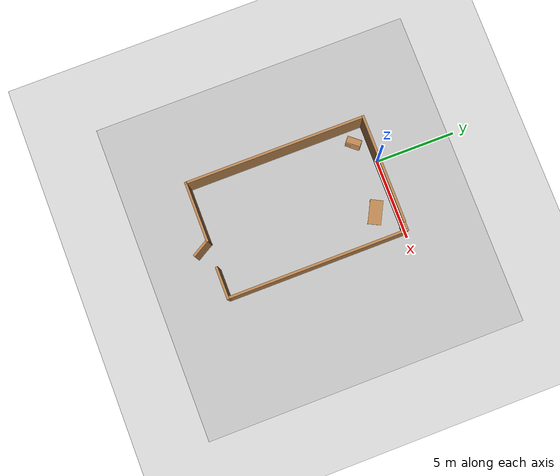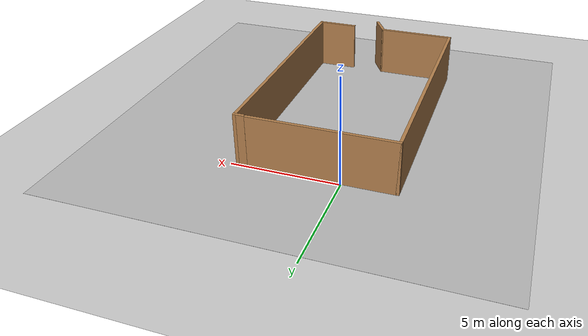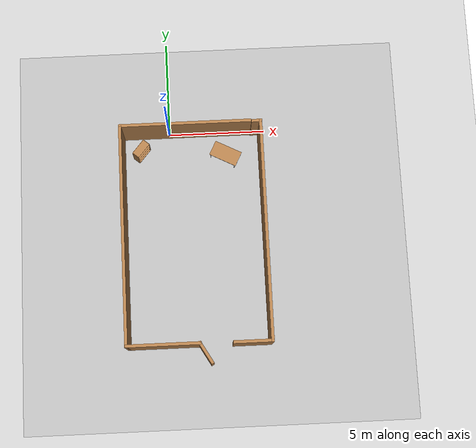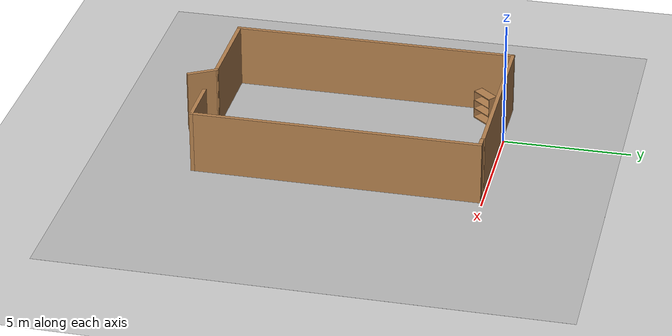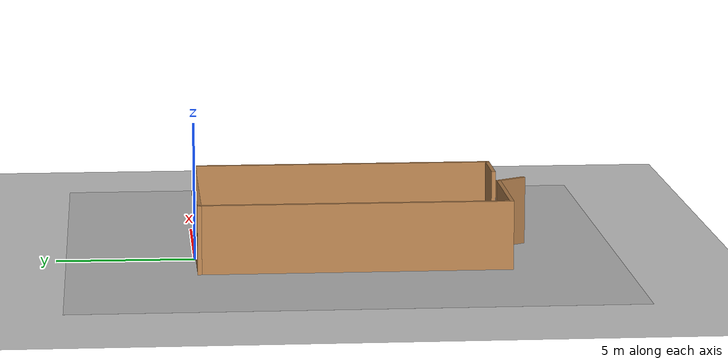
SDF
<sdf version="1.7">
 <world name="default">
  <light name="sun" type="directional">
   <pose>0 0 10 0 -0 0</pose>
   <diffuse>0.8 0.8 0.8 1</diffuse>
   <specular>0.2 0.2 0.2 1</specular>
   <attenuation>
    <range>1000</range>
    <constant>0.9</constant>
    <linear>0.01</linear>
    <quadratic>0.001</quadratic>
   </attenuation>
   <direction>-0.5 0.1 -0.9</direction>
   <spot><inner_angle>0</inner_angle><outer_angle>0</outer_angle><falloff>0</falloff></spot>
  </light>
  <model name="ground_plane">
   <static>1</static>
   <link name="link">
    <collision name="collision">
     <geometry><plane><normal>0 0 1</normal><size>100 100</size></plane></geometry>
     <surface><friction><ode><mu>100</mu><mu2>50</mu2></ode></friction></surface>
    </collision>
    <visual name="visual">
     <cast_shadows>0</cast_shadows>
     <geometry><plane><normal>0 0 1</normal><size>100 100</size></plane></geometry>
     <material>
      <script><uri>file://media/materials/scripts/gazebo.material</uri><name>Gazebo/Grey</name></script>
     </material>
    </visual>
   </link>
  </model>
  <gravity>0 0 -9.8</gravity>
  <magnetic_field>6e-06 2.3e-05 -4.2e-05</magnetic_field>
  <atmosphere type="adiabatic"/>
  <physics type="ode">
   <max_step_size>0.001</max_step_size>
   <real_time_factor>1</real_time_factor>
   <real_time_update_rate>1000</real_time_update_rate>
  </physics>
  <scene><ambient>0.4 0.4 0.4 1</ambient><background>0.7 0.7 0.7 1</background><shadows>1</shadows></scene>
  <spherical_coordinates>
   <surface_model>EARTH_WGS84</surface_model>
   <latitude_deg>0</latitude_deg>
   <longitude_deg>0</longitude_deg>
   <elevation>0</elevation>
   <heading_deg>0</heading_deg>
  </spherical_coordinates>
  <model name="bookshelf">
   <static>1</static>
   <link name="link">
    <inertial><mass>1</mass></inertial>
    <collision name="back">
     <pose>0 0.005 0.6 0 -0 0</pose>
     <geometry><box><size>0.9 0.01 1.2</size></box></geometry>
    </collision>
    <visual name="visual1">
     <pose>0 0.005 0.6 0 -0 0</pose>
     <geometry><box><size>0.9 0.01 1.2</size></box></geometry>
     <material>
      <script><uri>file://media/materials/scripts/gazebo.material</uri><name>Gazebo/Wood</name></script>
     </material>
    </visual>
    <collision name="left_side">
     <pose>0.45 -0.195 0.6 0 -0 0</pose>
     <geometry><box><size>0.02 0.4 1.2</size></box></geometry>
    </collision>
    <visual name="visual2">
     <pose>0.45 -0.195 0.6 0 -0 0</pose>
     <geometry><box><size>0.02 0.4 1.2</size></box></geometry>
     <material>
      <script><uri>file://media/materials/scripts/gazebo.material</uri><name>Gazebo/Wood</name></script>
     </material>
    </visual>
    <collision name="right_side">
     <pose>-0.45 -0.195 0.6 0 -0 0</pose>
     <geometry><box><size>0.02 0.4 1.2</size></box></geometry>
    </collision>
    <visual name="visual3">
     <pose>-0.45 -0.195 0.6 0 -0 0</pose>
     <geometry><box><size>0.02 0.4 1.2</size></box></geometry>
     <material>
      <script><uri>file://media/materials/scripts/gazebo.material</uri><name>Gazebo/Wood</name></script>
     </material>
    </visual>
    <collision name="bottom">
     <pose>0 -0.195 0.03 0 -0 0</pose>
     <geometry><box><size>0.88 0.4 0.06</size></box></geometry>
    </collision>
    <visual name="visual4">
     <pose>0 -0.195 0.03 0 -0 0</pose>
     <geometry><box><size>0.88 0.4 0.06</size></box></geometry>
     <material>
      <script><uri>file://media/materials/scripts/gazebo.material</uri><name>Gazebo/Wood</name></script>
     </material>
    </visual>
    <collision name="top">
     <pose>0 -0.195 1.19 0 -0 0</pose>
     <geometry><box><size>0.88 0.4 0.02</size></box></geometry>
    </collision>
    <visual name="visual5">
     <pose>0 -0.195 1.19 0 -0 0</pose>
     <geometry><box><size>0.88 0.4 0.02</size></box></geometry>
     <material>
      <script><uri>file://media/materials/scripts/gazebo.material</uri><name>Gazebo/Wood</name></script>
     </material>
    </visual>
    <collision name="low_shelf">
     <pose>0 -0.195 0.43 0 -0 0</pose>
     <geometry><box><size>0.88 0.4 0.02</size></box></geometry>
    </collision>
    <visual name="visual6">
     <pose>0 -0.195 0.43 0 -0 0</pose>
     <geometry><box><size>0.88 0.4 0.02</size></box></geometry>
     <material>
      <script><uri>file://media/materials/scripts/gazebo.material</uri><name>Gazebo/Wood</name></script>
     </material>
    </visual>
    <collision name="high_shelf">
     <pose>0 -0.195 0.8 0 -0 0</pose>
     <geometry><box><size>0.88 0.4 0.02</size></box></geometry>
    </collision>
    <visual name="visual7">
     <pose>0 -0.195 0.8 0 -0 0</pose>
     <geometry><box><size>0.88 0.4 0.02</size></box></geometry>
     <material>
      <script><uri>file://media/materials/scripts/gazebo.material</uri><name>Gazebo/Wood</name></script>
     </material>
    </visual>
   </link>
   <pose>-1.6174 -0.861716 0 0 -0 0.869974</pose>
  </model>
  <model name="wall_of_room_with_objects_on_ground">
   <pose>0.87 -6.12754 0 0 -0 0</pose>
   <link name="Wall_2">
    <collision name="Wall_2_Collision">
     <geometry><box><size>11.25 0.15 2.5</size></box></geometry>
     <pose>0 0 1.25 0 -0 0</pose>
    </collision>
    <visual name="Wall_2_Visual">
     <pose>0 0 1.25 0 -0 0</pose>
     <geometry><box><size>11.25 0.15 2.5</size></box></geometry>
     <material>
      <script><uri>file://media/materials/scripts/gazebo.material</uri><name>Gazebo/Wood</name></script>
      <ambient>1 1 1 1</ambient>
     </material>
     <meta><layer>0</layer></meta>
    </visual>
    <pose>-3.3 0.47754 0 0 -0 -1.5708</pose>
   </link>
   <link name="Wall_4">
    <collision name="Wall_4_Collision">
     <geometry><box><size>3.75 0.15 2.5</size></box></geometry>
     <pose>0 0 1.25 0 -0 0</pose>
    </collision>
    <visual name="Wall_4_Visual">
     <pose>0 0 1.25 0 -0 0</pose>
     <geometry><box><size>3.75 0.15 2.5</size></box></geometry>
     <material>
      <script><uri>file://media/materials/scripts/gazebo.material</uri><name>Gazebo/Wood</name></script>
      <ambient>1 1 1 1</ambient>
     </material>
     <meta><layer>0</layer></meta>
    </visual>
    <pose>-1.5 -5.07246 0 0 -0 0</pose>
   </link>
   <link name="Wall_5">
    <collision name="Wall_5_Collision">
     <geometry><box><size>1.25 0.15 2.5</size></box></geometry>
     <pose>0 0 1.25 0 -0 0</pose>
    </collision>
    <visual name="Wall_5_Visual">
     <pose>0 0 1.25 0 -0 0</pose>
     <geometry><box><size>1.25 0.15 2.5</size></box></geometry>
     <material>
      <script><uri>file://media/materials/scripts/gazebo.material</uri><name>Gazebo/Wood</name></script>
      <ambient>1 1 1 1</ambient>
     </material>
     <meta><layer>0</layer></meta>
    </visual>
    <pose>0.575001 -5.54877 0 0 -0 -1.0472</pose>
   </link>
   <link name="Wall_7">
    <collision name="Wall_7_Collision">
     <geometry><box><size>6.75 0.15 2.5</size></box></geometry>
     <pose>0 0 1.25 0 -0 0</pose>
    </collision>
    <visual name="Wall_7_Visual">
     <pose>0 0 1.25 0 -0 0</pose>
     <geometry><box><size>6.75 0.15 2.5</size></box></geometry>
     <material>
      <script><uri>file://media/materials/scripts/gazebo.material</uri><name>Gazebo/Wood</name></script>
      <ambient>1 1 1 1</ambient>
     </material>
     <meta><layer>0</layer></meta>
    </visual>
    <pose>0 6.02754 0 0 -0 0</pose>
   </link>
   <static>1</static>
  </model>
  <model name="Floor_room">
   <link name="main">
    <pose>0 0 0.01 0 -0 0</pose>
    <collision name="main_Collision"><geometry><box><size>20 20 0.001</size></box></geometry></collision>
    <visual name="main_Visual">
     <geometry><box><size>20 20 0.001</size></box></geometry>
     <material>
      <script>
       <uri>model://Floor_room/materials/scripts</uri>
       <uri>model://Floor_room/materials/textures</uri>
       <name>floor_room</name>
      </script>
     </material>
    </visual>
   </link>
   <static>1</static>
   <pose>2.08869 -5.34605 0 0 -0 0</pose>
  </model>
  <model name="ground_objects_wall_2">
   <pose>2.39607 -5.65252 0 0 -0 0</pose>
   <link name="Wall_0">
    <collision name="Wall_0_Collision">
     <geometry><box><size>11.25 0.15 2.5</size></box></geometry>
     <pose>0 0 1.25 0 -0 0</pose>
    </collision>
    <visual name="Wall_0_Visual">
     <pose>0 0 1.25 0 -0 0</pose>
     <geometry><box><size>11.25 0.15 2.5</size></box></geometry>
     <material>
      <script><uri>file://media/materials/scripts/gazebo.material</uri><name>Gazebo/Wood</name></script>
      <ambient>0.756863 0.490196 0.0666667 1</ambient>
     </material>
     <meta><layer>0</layer></meta>
    </visual>
    <pose>2.32107 -0.027518 0 0 -0 -1.5708</pose>
   </link>
   <link name="Wall_4">
    <collision name="Wall_4_Collision">
     <geometry><box><size>0.530939 0.15 2.5</size></box></geometry>
     <pose>0 0 1.25 0 -0 0</pose>
    </collision>
    <visual name="Wall_4_Visual">
     <pose>0 0 1.25 0 -0 0</pose>
     <geometry><box><size>0.530939 0.15 2.5</size></box></geometry>
     <material>
      <script><uri>file://media/materials/scripts/gazebo.material</uri><name>Gazebo/Wood</name></script>
      <ambient>1 1 1 1</ambient>
     </material>
     <meta><layer>0</layer></meta>
    </visual>
    <pose>2.1306 5.52248 0 0 -0 3.14159</pose>
   </link>
   <link name="Wall_6">
    <collision name="Wall_6_Collision">
     <geometry><box><size>2 0.15 2.5</size></box></geometry>
     <pose>0 0 1.25 0 -0 0</pose>
    </collision>
    <visual name="Wall_6_Visual">
     <pose>0 0 1.25 0 -0 0</pose>
     <geometry><box><size>2 0.15 2.5</size></box></geometry>
     <material>
      <script><uri>file://media/materials/scripts/gazebo.material</uri><name>Gazebo/Wood</name></script>
      <ambient>1 1 1 1</ambient>
     </material>
     <meta><layer>0</layer></meta>
    </visual>
    <pose>1.39607 -5.57752 0 0 -0 3.14159</pose>
   </link>
   <static>1</static>
  </model>
  <model name="table">
   <static>1</static>
   <link name="link">
    <collision name="surface">
     <pose>0 0 1 0 -0 0</pose>
     <geometry><box><size>1.5 0.8 0.03</size></box></geometry>
     <surface><friction><ode><mu>0.6</mu><mu2>0.6</mu2></ode></friction></surface>
    </collision>
    <visual name="visual1">
     <pose>0 0 1 0 -0 0</pose>
     <geometry><box><size>1.5 0.8 0.03</size></box></geometry>
     <material>
      <script><uri>file://media/materials/scripts/gazebo.material</uri><name>Gazebo/Wood</name></script>
     </material>
    </visual>
    <collision name="front_left_leg">
     <pose>0.68 0.38 0.5 0 -0 0</pose>
     <geometry><cylinder><radius>0.02</radius><length>1</length></cylinder></geometry>
    </collision>
    <visual name="front_left_leg">
     <pose>0.68 0.38 0.5 0 -0 0</pose>
     <geometry><cylinder><radius>0.02</radius><length>1</length></cylinder></geometry>
     <material>
      <script><uri>file://media/materials/scripts/gazebo.material</uri><name>Gazebo/Grey</name></script>
     </material>
    </visual>
    <collision name="front_right_leg">
     <pose>0.68 -0.38 0.5 0 -0 0</pose>
     <geometry><cylinder><radius>0.02</radius><length>1</length></cylinder></geometry>
    </collision>
    <visual name="front_right_leg">
     <pose>0.68 -0.38 0.5 0 -0 0</pose>
     <geometry><cylinder><radius>0.02</radius><length>1</length></cylinder></geometry>
     <material>
      <script><uri>file://media/materials/scripts/gazebo.material</uri><name>Gazebo/Grey</name></script>
     </material>
    </visual>
    <collision name="back_right_leg">
     <pose>-0.68 -0.38 0.5 0 -0 0</pose>
     <geometry><cylinder><radius>0.02</radius><length>1</length></cylinder></geometry>
    </collision>
    <visual name="back_right_leg">
     <pose>-0.68 -0.38 0.5 0 -0 0</pose>
     <geometry><cylinder><radius>0.02</radius><length>1</length></cylinder></geometry>
     <material>
      <script><uri>file://media/materials/scripts/gazebo.material</uri><name>Gazebo/Grey</name></script>
     </material>
    </visual>
    <collision name="back_left_leg">
     <pose>-0.68 0.38 0.5 0 -0 0</pose>
     <geometry><cylinder><radius>0.02</radius><length>1</length></cylinder></geometry>
    </collision>
    <visual name="back_left_leg">
     <pose>-0.68 0.38 0.5 0 -0 0</pose>
     <geometry><cylinder><radius>0.02</radius><length>1</length></cylinder></geometry>
     <material>
      <script><uri>file://media/materials/scripts/gazebo.material</uri><name>Gazebo/Grey</name></script>
     </material>
    </visual>
   </link>
   <pose>2.91199 -1.26098 -0.502124 0 0 -0.473761</pose>
  </model>
 </world>
</sdf>
